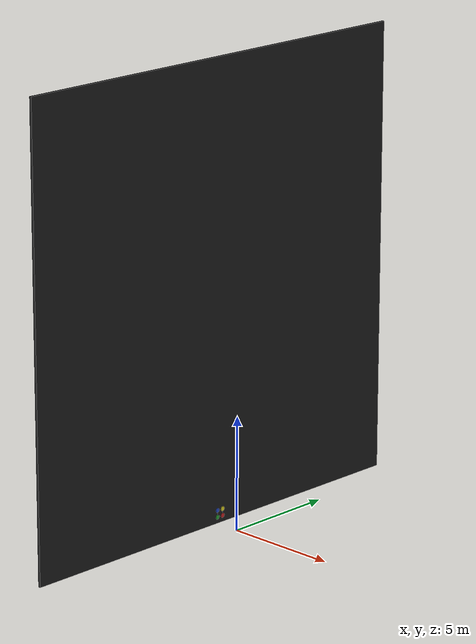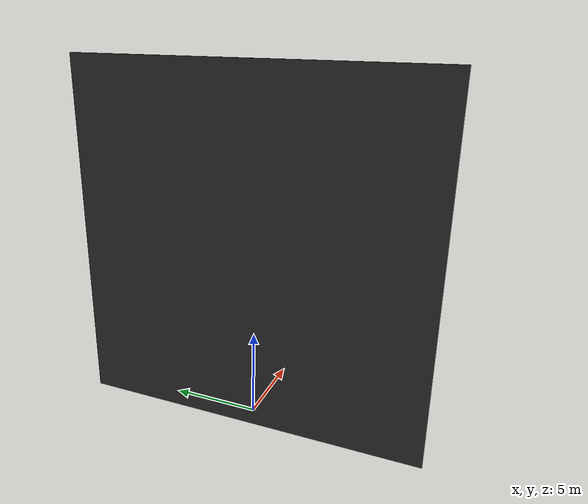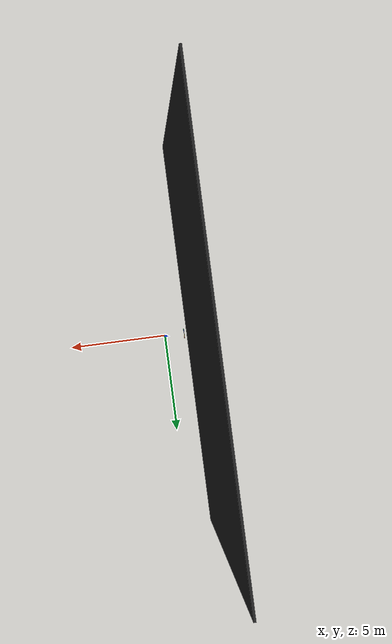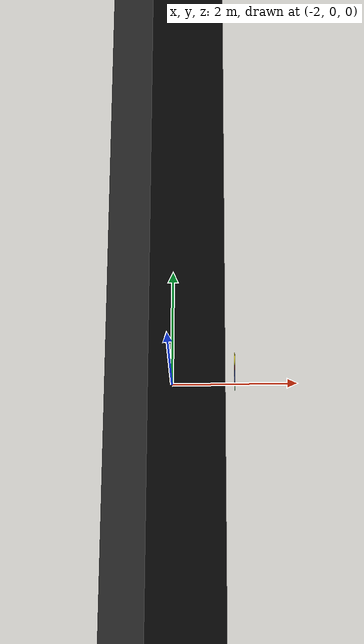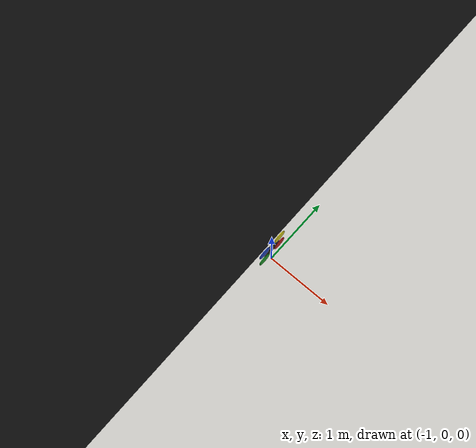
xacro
<?xml version="1.0"?>
<robot xmlns:xacro="http://www.ros.org/wiki/xacro" name="wheel">
<xacro:include filename="$(find rov_description)/src/env/xacro/fun_define.xacro"/>

<!-- LED基座Z轴坐标变量 -->
<xacro:property name="led_base_z" value="0.5"/>

<!-- 光源相对于LED基座的Z轴偏移 -->
<xacro:property name="led_height" value="0.15"/>  <!-- 高位置光源偏移 -->
<!-- 添加世界坐标系链接 -->
<link name="world"/>

<!-- 添加固定关节将机器人固定到世界坐标系 -->
<joint name="world_to_led_base" type="fixed">
    <parent link="world"/>
    <child link="led_base_link"/>
    <origin xyz="-1 0 ${led_base_z}" rpy="0 ${-M_PI/2} 0"/>
</joint>

<xacro:mylink_tri myname="led_base_link" l="0.3" w="0.3" h="0.01" x="0" y="0" z="0" wx="0" wy="0" wz="0" color="black" r="0" g="0" b="0" a="1" mass="0.1" ixx="0.001" ixy="0.0" ixz="0.0" iyy="0.001" iyz="0.0" izz="0.001"/>
<gazebo reference="led_base_link">
        <material>Gazebo/Black</material>
</gazebo>

<xacro:mylink_tri myname="led_background_link" l="20" w="20" h="0.1" x="0" y="0" z="0" wx="0" wy="0" wz="0" color="black" r="0" g="0" b="0" a="1" mass="0.1" ixx="0.001" ixy="0.0" ixz="0.0" iyy="0.001" iyz="0.0" izz="0.001"/>
<gazebo reference="led_background_link">
        <material>Gazebo/Black</material>
</gazebo>

<!-- 添加固定关节将机器人固定到世界坐标系 -->
<joint name="world_to_led_background" type="fixed">
    <parent link="world"/>
    <child link="led_background_link"/>
    <origin xyz="-1.2 0 10" rpy="0 ${-M_PI/2} 0"/>
</joint>

<xacro:mylink_cyl link_name="led_lu_link" l="0.01" r_="0.1" x="0" y="0" z="0" wx="${M_PI/2}" wy="${M_PI/2}" wz="0" color="bule" r="0" g="0" b="0" a="1" mass="0.1" ixx="0.001" ixy="0.0" ixz="0.0" iyy="0.001" iyz="0.0" izz="0.001"/>
<gazebo reference="led_lu_link">
        <material>Gazebo/Green</material>
</gazebo>
<xacro:mylink_cyl link_name="led_ru_link" l="0.01" r_="0.1" x="0" y="0" z="0" wx="${M_PI/2}" wy="${M_PI/2}" wz="0" color="bule" r="0" g="0" b="0" a="1" mass="0.1" ixx="0.001" ixy="0.0" ixz="0.0" iyy="0.001" iyz="0.0" izz="0.001"/>
<gazebo reference="led_ru_link">
        <material>Gazebo/Red</material>
</gazebo>
<xacro:mylink_cyl link_name="led_ld_link" l="0.01" r_="0.1" x="0" y="0" z="0" wx="${M_PI/2}" wy="${M_PI/2}" wz="0" color="bule" r="0" g="0" b="0" a="1" mass="0.1" ixx="0.001" ixy="0.0" ixz="0.0" iyy="0.001" iyz="0.0" izz="0.001"/>
<gazebo reference="led_ld_link">
        <material>Gazebo/Blue</material>
</gazebo>
<!-- 右下LED (黄色) -->
<xacro:mylink_cyl link_name="led_rd_link" l="0.01" r_="0.1" x="0" y="0" z="0" wx="${M_PI/2}" wy="${M_PI/2}" wz="0" color="yellow" r="255" g="255" b="0" a="1" mass="0.1" ixx="0.001" ixy="0.0" ixz="0.0" iyy="0.001" iyz="0.0" izz="0.001"/>
<gazebo reference="led_rd_link">
    <material>Gazebo/Yellow</material>
</gazebo>

<xacro:myjoint_fixed joint_name="led_ru_joint" joint_type="fixed" x="-0.15" y="0.15" z="-0.005" wx="${M_PI/2}" wz="0" wy="0" parent_link="led_base_link" child_link="led_ru_link"/>
<xacro:myjoint_fixed joint_name="led_rd_joint" joint_type="fixed" x="0.15" y="0.15" z="-0.005" wx="${M_PI/2}" wz="0" wy="0" parent_link="led_base_link" child_link="led_rd_link"/>
<xacro:myjoint_fixed joint_name="led_lu_joint" joint_type="fixed" x="-0.15" y="-0.15" z="-0.005" wx="${M_PI/2}" wz="0" wy="0" parent_link="led_base_link" child_link="led_lu_link"/>
<xacro:myjoint_fixed joint_name="led_ld_joint" joint_type="fixed" x="0.15" y="-0.15" z="-0.005" wx="${M_PI/2}" wz="0" wy="0" parent_link="led_base_link" child_link="led_ld_link"/>

<!-- 四个Spot光源，分别照射四个LED标识 -->

<!-- 光源1：照射黄色LED (led_rd_link, 右下) -->
<link name="spot_light_1_link">
    <inertial>
        <mass value="0.001"/>
        <inertia ixx="0.0001" ixy="0.0" ixz="0.0" iyy="0.0001" iyz="0.0" izz="0.0001"/>
    </inertial>
</link>
<joint name="world_to_spot_light_1" type="fixed">
    <parent link="world"/>
    <child link="spot_light_1_link"/>
    <origin xyz="-0.7 -0.15 ${led_base_z + led_height}" rpy="0 1.5708 0"/>
</joint>
<gazebo reference="spot_light_1_link">
    <light type="spot" name="spot_light_1">
        <pose>0 0 0 0 0 0</pose>
        <diffuse>1 1 1 1</diffuse>
        <specular>1 1 1 1</specular>
        <attenuation>
            <range>1.0</range>
            <constant>0.5</constant>
            <linear>0.01</linear>
            <quadratic>0.01</quadratic>
        </attenuation>
        <cast_shadows>true</cast_shadows>
        <direction>0 0 -1</direction>
        <spot>
            <inner_angle>0.3</inner_angle>
            <outer_angle>0.6</outer_angle>
            <falloff>1.0</falloff>
        </spot>
    </light>
</gazebo>

<!-- 光源2：照射红色LED (led_ru_link, 右上) -->
<link name="spot_light_2_link">
    <inertial>
        <mass value="0.001"/>
        <inertia ixx="0.0001" ixy="0.0" ixz="0.0" iyy="0.0001" iyz="0.0" izz="0.0001"/>
    </inertial>
</link>
<joint name="world_to_spot_light_2" type="fixed">
    <parent link="world"/>
    <child link="spot_light_2_link"/>
    <origin xyz="-0.7 0.15 ${led_base_z + led_height}" rpy="0 1.5708 0"/>
</joint>
<gazebo reference="spot_light_2_link">
    <light type="spot" name="spot_light_2">
        <pose>0 0 0 0 0 0</pose>
        <diffuse>1 1 1 1</diffuse>
        <specular>1 1 1 1</specular>
        <attenuation>
            <range>1.0</range>
            <constant>0.5</constant>
            <linear>0.01</linear>
            <quadratic>0.01</quadratic>
        </attenuation>
        <cast_shadows>true</cast_shadows>
        <direction>0 0 -1</direction>
        <spot>
            <inner_angle>0.3</inner_angle>
            <outer_angle>0.6</outer_angle>
            <falloff>1.0</falloff>
        </spot>
    </light>
</gazebo>

<!-- 光源3：照射绿色LED (led_lu_link, 左上) -->
<link name="spot_light_3_link">
    <inertial>
        <mass value="0.001"/>
        <inertia ixx="0.0001" ixy="0.0" ixz="0.0" iyy="0.0001" iyz="0.0" izz="0.0001"/>
    </inertial>
</link>
<joint name="world_to_spot_light_3" type="fixed">
    <parent link="world"/>
    <child link="spot_light_3_link"/>
    <origin xyz="-0.7 0.15 ${led_base_z - led_height}" rpy="0 1.5708 0"/>
</joint>
<gazebo reference="spot_light_3_link">
    <light type="spot" name="spot_light_3">
        <pose>0 0 0 0 0 0</pose>
        <diffuse>1 1 1 1</diffuse>
        <specular>1 1 1 1</specular>
        <attenuation>
            <range>1.0</range>
            <constant>0.5</constant>
            <linear>0.01</linear>
            <quadratic>0.01</quadratic>
        </attenuation>
        <cast_shadows>true</cast_shadows>
        <direction>0 0 -1</direction>
        <spot>
            <inner_angle>0.3</inner_angle>
            <outer_angle>0.6</outer_angle>
            <falloff>1.0</falloff>
        </spot>
    </light>
</gazebo>

<!-- 光源4：照射蓝色LED (led_ld_link, 左下) -->
<link name="spot_light_4_link">
    <inertial>
        <mass value="0.001"/>
        <inertia ixx="0.0001" ixy="0.0" ixz="0.0" iyy="0.0001" iyz="0.0" izz="0.0001"/>
    </inertial>
</link>
<joint name="world_to_spot_light_4" type="fixed">
    <parent link="world"/>
    <child link="spot_light_4_link"/>
    <origin xyz="-0.7 -0.15 ${led_base_z - led_height}" rpy="0 1.5708 0"/>
</joint>
<gazebo reference="spot_light_4_link">
    <light type="spot" name="spot_light_4">
        <pose>0 0 0 0 0 0</pose>
        <diffuse>1 1 1 1</diffuse>
        <specular>1 1 1 1</specular>
        <attenuation>
            <range>1.0</range>
            <constant>0.5</constant>
            <linear>0.01</linear>
            <quadratic>0.01</quadratic>
        </attenuation>
        <cast_shadows>true</cast_shadows>
        <direction>0 0 -1</direction>
        <spot>
            <inner_angle>0.3</inner_angle>
            <outer_angle>0.6</outer_angle>
            <falloff>1.0</falloff>
        </spot>
    </light>
</gazebo>

</robot>

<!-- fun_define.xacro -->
<robot xmlns:xacro="http://www.ros.org/wiki/xacro" name="body_define">
<!--常量定义-->
<xacro:property name="M_PI" value="3.1415926535897931" />

<!--定义矩形link-->
<xacro:macro name="mylink_tri" params="myname l w h x y z wx wy wz color r g b a mass ixx ixy ixz iyy iyz izz">
	<link name="${myname}">
	<visual>
		<geometry>
			<box size="${l} ${w} ${h}"/>
		</geometry>
		<origin xyz="${x} ${y} ${z}" rpy="${wx} ${wy} ${wz}"/>
		<meterial name="${color}">
			<color rgba="${r} ${g} ${b} ${a}"/>
		</meterial>
	</visual>
	<collision>
		<geometry>
			<box size="${l} ${w} ${h}"/>
		</geometry>
	</collision>
	<inertial>
		<mass value="${mass}"/>
		<inertia ixx="${ixx}" ixy="${ixy}" ixz="${ixz}" iyy="${iyy}" iyz="${iyz}" izz="${izz}"/>
	</inertial>
	</link>
</xacro:macro>

<!--定义椭圆link-->
<xacro:macro name="mylink_cyl" params="link_name l r_ x y z wx wy wz color r g b a mass ixx ixy ixz iyy iyz izz">
	<link name="${link_name}">
		<visual>
			<geometry>
				<cylinder length="${l}" radius="${r_}"/>
			</geometry>
			<origin xyz="${x} ${y} ${z}" rpy="${wx} ${wy} ${wz}"/>
			<meterial name="${color}">
				<color rgba="${r} ${g} ${b} ${a}"/>
			</meterial>
		</visual>
		<collision>
			<geometry>
				<cylinder length="${l}" radius="${r_}"/>
			</geometry>
		</collision>
		<inertial>
			<mass value="${mass}"/>
			<inertia ixx="${ixx}" ixy="${ixy}" ixz="${ixz}" iyy="${iyy}" iyz="${iyz}" izz="${izz}"/>
		</inertial>
	</link>
</xacro:macro>

<!--定义fixed_joint-->
<xacro:macro name="myjoint_fixed" params="joint_name joint_type x y z wx wz wy parent_link child_link">
	<joint name="${joint_name}" type="${joint_type}">
		<origin xyz="${x} ${y} ${z}" rpy="${wx} ${wy} ${wz}"/>
  		<parent link="${parent_link}"/>
   		<child link="${child_link}"/>
	</joint>
</xacro:macro>

<!--定义continuous_joint-->
<xacro:macro name="myjoint_continuous" params="joint_name joint_type x y z wx wy wz parent_link child_link ax ay az">
	<joint name="${joint_name}" type="${joint_type}">
		<origin xyz="${x} ${y} ${z}" rpy="${wx} ${wy} ${wz}"/>
    		<parent link="${parent_link}" />
    		<child link="${child_link}" />
    		<axis xyz="${ax} ${ay} ${az}"/>
			<hardwareInterface>hardware_interface/EffortJointInterface</hardwareInterface>

	</joint>
</xacro:macro>

<!-- 传动实现:用于连接控制器与关节 -->
    <xacro:macro name="joint_trans_v" params="joint_name">
        <!-- Transmission is important to link the joints and the controller -->
        <transmission name="${joint_name}_trans">
            <type>transmission_interface/SimpleTransmission</type>
            <joint name="${joint_name}">
                <hardwareInterface>hardware_interface/VelocityJointInterface</hardwareInterface>
            </joint>
            <actuator name="${joint_name}_motor">
                <hardwareInterface>hardware_interface/VelocityJointInterface</hardwareInterface>
                <mechanicalReduction>1</mechanicalReduction>
            </actuator>
        </transmission>
    </xacro:macro>
<!-- 传动实现:用于连接控制器与关节 -->
<xacro:macro name="joint_trans_e" params="joint_name">
  <transmission name="trans_${joint_name}">
    <type>transmission_interface/SimpleTransmission</type>
    <actuator name="${joint_name}_motor">
      <mechanicalReduction>1</mechanicalReduction>
    </actuator>
    <joint name="${joint_name}">
      <hardwareInterface>hardware_interface/EffortJointInterface</hardwareInterface>
    </joint>
  </transmission>
</xacro:macro>

<!-- 传动实现:用于连接控制器与关节 -->
<xacro:macro name="joint_trans_v1" params="joint_name">
	<!-- Transmission is important to link the joints and the controller -->
	<transmission name="${joint_name}_trans">
		<type>transmission_interface/SimpleTransmission</type>
		<joint name="${joint_name}">
			<hardwareInterface>hardware_interface/VelocityJointInterface</hardwareInterface>
		</joint>
		<actuator name="${joint_name}_motor">
			<hardwareInterface>hardware_interface/VelocityJointInterface</hardwareInterface>
			<mechanicalReduction>1</mechanicalReduction>
		</actuator>
	</transmission>
</xacro:macro>

</robot>
